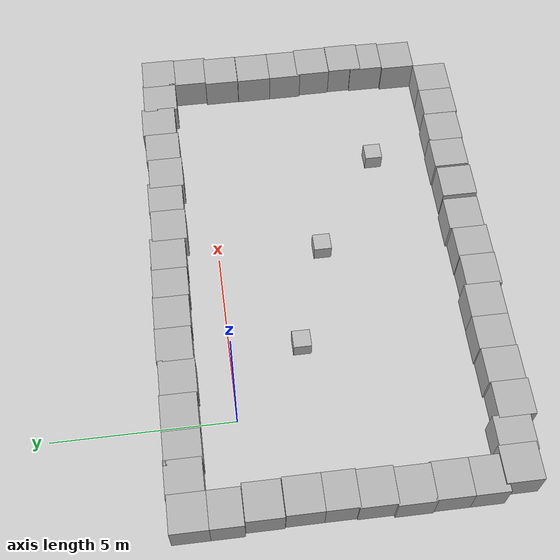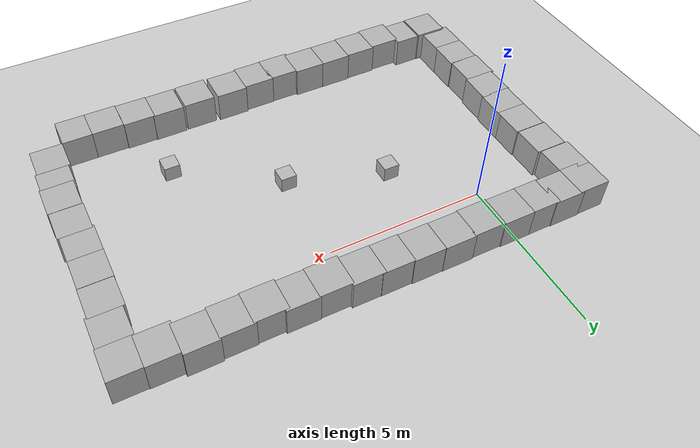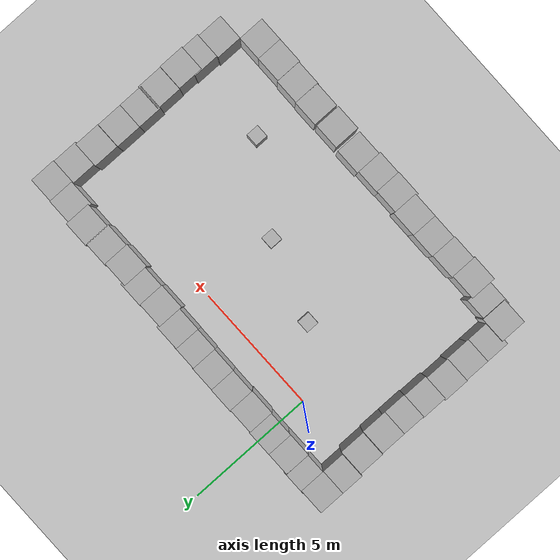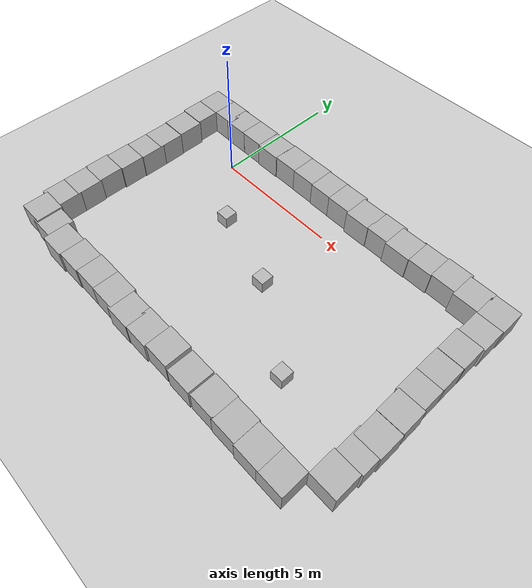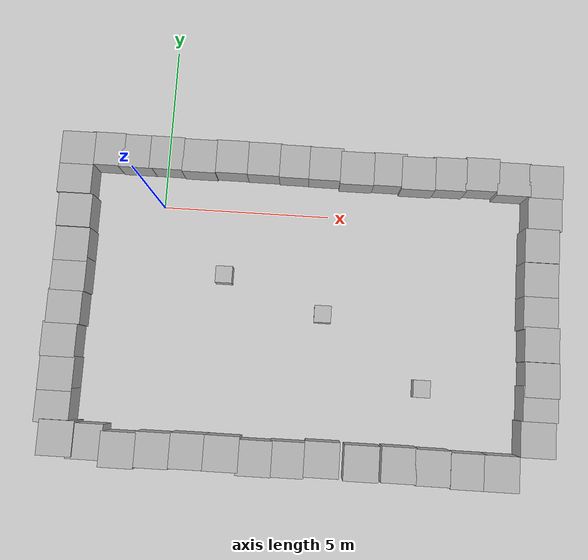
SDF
<sdf version="1.10">
 <world name="empty">
  <model name="ground_plane">
   <static>true</static>
   <link name="link">
    <collision name="collision">
     <geometry><plane><normal>0 0 1</normal><size>100 100</size></plane></geometry>
     <surface><friction><ode><mu>100</mu><mu2>100</mu2></ode></friction></surface>
    </collision>
    <visual name="visual">
     <geometry><plane><normal>0 0 1</normal><size>100 100</size></plane></geometry>
     <material>
      <ambient>0.800000012 0.800000012 0.800000012 1</ambient>
      <diffuse>0.800000012 0.800000012 0.800000012 1</diffuse>
      <specular>0.800000012 0.800000012 0.800000012 1</specular>
     </material>
    </visual>
    <inertial>
     <mass>1</mass>
     <inertia><ixx>1</ixx><ixy>0</ixy><ixz>0</ixz><iyy>1</iyy><iyz>0</iyz><izz>1</izz></inertia>
    </inertial>
   </link>
  </model>
  <model name="box_0">
   <pose>11.32392406463623 -5.2342853546142578 0.49999052286148071 4.5785601260241481e-06 -1.3607700603230235e-07 -1.2972199943013749e-06</pose>
   <link name="box_link">
    <inertial>
     <inertia><ixx>0.16666</ixx><ixy>0</ixy><ixz>0</ixz><iyy>0.16666</iyy><iyz>0</iyz><izz>0.16666</izz></inertia>
     <mass>1</mass>
    </inertial>
    <collision name="box_collision"><geometry><box><size>1 1 1</size></box></geometry></collision>
    <visual name="box_visual">
     <geometry><box><size>1 1 1</size></box></geometry>
     <material>
      <ambient>0.300000012 0.300000012 0.300000012 1</ambient>
      <diffuse>0.699999988 0.699999988 0.699999988 1</diffuse>
      <specular>1 1 1 1</specular>
     </material>
    </visual>
   </link>
   <static>true</static>
  </model>
  <model name="box_1">
   <pose>0.081497767922265402 1.4758442578728908 0.50000082447435479 -1.659949377580284e-07 3.0248841230517064e-06 -0.00088691190674532714</pose>
   <link name="box_link">
    <inertial>
     <inertia><ixx>0.16666</ixx><ixy>0</ixy><ixz>0</ixz><iyy>0.16666</iyy><iyz>0</iyz><izz>0.16666</izz></inertia>
     <mass>1</mass>
    </inertial>
    <collision name="box_collision"><geometry><box><size>1 1 1</size></box></geometry></collision>
    <visual name="box_visual">
     <geometry><box><size>1 1 1</size></box></geometry>
     <material>
      <ambient>0.300000012 0.300000012 0.300000012 1</ambient>
      <diffuse>0.699999988 0.699999988 0.699999988 1</diffuse>
      <specular>1 1 1 1</specular>
     </material>
    </visual>
   </link>
   <static>true</static>
  </model>
  <model name="box_6">
   <pose>4.216820240020752 -7.192176342010498 0.49999821186065674 1.6514999738076241e-06 3.9077199600068179e-07 2.3029299294683244e-07</pose>
   <link name="box_link">
    <inertial>
     <inertia><ixx>0.16666</ixx><ixy>0</ixy><ixz>0</ixz><iyy>0.16666</iyy><iyz>0</iyz><izz>0.16666</izz></inertia>
     <mass>1</mass>
    </inertial>
    <collision name="box_collision"><geometry><box><size>1 1 1</size></box></geometry></collision>
    <visual name="box_visual">
     <geometry><box><size>1 1 1</size></box></geometry>
     <material>
      <ambient>0.300000012 0.300000012 0.300000012 1</ambient>
      <diffuse>0.699999988 0.699999988 0.699999988 1</diffuse>
      <specular>1 1 1 1</specular>
     </material>
    </visual>
   </link>
   <static>true</static>
  </model>
  <model name="box_9">
   <pose>7.6121358871459961 1.3005990982055664 0.500052809715271 1.8970099874706375e-06 -5.7500100969227469e-06 2.3601799087898293e-06</pose>
   <link name="box_link">
    <inertial>
     <inertia><ixx>0.16666</ixx><ixy>0</ixy><ixz>0</ixz><iyy>0.16666</iyy><iyz>0</iyz><izz>0.16666</izz></inertia>
     <mass>1</mass>
    </inertial>
    <collision name="box_collision"><geometry><box><size>1 1 1</size></box></geometry></collision>
    <visual name="box_visual">
     <geometry><box><size>1 1 1</size></box></geometry>
     <material>
      <ambient>0.300000012 0.300000012 0.300000012 1</ambient>
      <diffuse>0.699999988 0.699999988 0.699999988 1</diffuse>
      <specular>1 1 1 1</specular>
     </material>
    </visual>
   </link>
   <static>true</static>
  </model>
  <model name="box_1_1">
   <pose>-0.82771368686159152 1.4738958420804569 0.49999995309102147 -9.5054967524918771e-07 -6.7096570775987137e-07 -5.8611763846747842e-05</pose>
   <link name="box_link">
    <inertial>
     <inertia><ixx>0.16666</ixx><ixy>0</ixy><ixz>0</ixz><iyy>0.16666</iyy><iyz>0</iyz><izz>0.16666</izz></inertia>
     <mass>1</mass>
    </inertial>
    <collision name="box_collision"><geometry><box><size>1 1 1</size></box></geometry></collision>
    <visual name="box_visual">
     <geometry><box><size>1 1 1</size></box></geometry>
     <material>
      <ambient>0.300000012 0.300000012 0.300000012 1</ambient>
      <diffuse>0.699999988 0.699999988 0.699999988 1</diffuse>
      <specular>1 1 1 1</specular>
     </material>
    </visual>
   </link>
   <static>true</static>
  </model>
  <model name="box_1_2">
   <pose>-1.6850342750549316 1.4961209297180176 0.4999995231628418 -1.7791300232078049e-06 -1.0382700165611504e-06 -5.4270199116068455e-05</pose>
   <link name="box_link">
    <inertial>
     <inertia><ixx>0.16666</ixx><ixy>0</ixy><ixz>0</ixz><iyy>0.16666</iyy><iyz>0</iyz><izz>0.16666</izz></inertia>
     <mass>1</mass>
    </inertial>
    <collision name="box_collision"><geometry><box><size>1 1 1</size></box></geometry></collision>
    <visual name="box_visual">
     <geometry><box><size>1 1 1</size></box></geometry>
     <material>
      <ambient>0.300000012 0.300000012 0.300000012 1</ambient>
      <diffuse>0.699999988 0.699999988 0.699999988 1</diffuse>
      <specular>1 1 1 1</specular>
     </material>
    </visual>
   </link>
   <static>true</static>
  </model>
  <model name="box_1_4">
   <pose>-2.3311622142791748 -6.9827756881713867 0.56375974416732788 1.4772699527233467e-06 -7.2460899504500609e-06 -7.8109095600479929e-06</pose>
   <link name="box_link">
    <inertial>
     <inertia><ixx>0.16666</ixx><ixy>0</ixy><ixz>0</ixz><iyy>0.16666</iyy><iyz>0</iyz><izz>0.16666</izz></inertia>
     <mass>1</mass>
    </inertial>
    <collision name="box_collision"><geometry><box><size>1 1 1</size></box></geometry></collision>
    <visual name="box_visual">
     <geometry><box><size>1 1 1</size></box></geometry>
     <material>
      <ambient>0.300000012 0.300000012 0.300000012 1</ambient>
      <diffuse>0.699999988 0.699999988 0.699999988 1</diffuse>
      <specular>1 1 1 1</specular>
     </material>
    </visual>
   </link>
   <static>true</static>
  </model>
  <model name="box_1_5">
   <pose>11.367439270019531 0.28831985592842102 0.49997654557228088 -1.2311899366336e-06 2.0099299617559339e-06 -0.00044121199743193425</pose>
   <link name="box_link">
    <inertial>
     <inertia><ixx>0.16666</ixx><ixy>0</ixy><ixz>0</ixz><iyy>0.16666</iyy><iyz>0</iyz><izz>0.16666</izz></inertia>
     <mass>1</mass>
    </inertial>
    <collision name="box_collision"><geometry><box><size>1 1 1</size></box></geometry></collision>
    <visual name="box_visual">
     <geometry><box><size>1 1 1</size></box></geometry>
     <material>
      <ambient>0.300000012 0.300000012 0.300000012 1</ambient>
      <diffuse>0.699999988 0.699999988 0.699999988 1</diffuse>
      <specular>1 1 1 1</specular>
     </material>
    </visual>
   </link>
   <static>true</static>
  </model>
  <model name="box_1_6">
   <pose>-1.5197896957397461 -7.0334105491638184 0.50000894069671631 -4.4685905171906164e-07 1.8334601501242074e-06 -0.00052203906253900389</pose>
   <link name="box_link">
    <inertial>
     <inertia><ixx>0.16666</ixx><ixy>0</ixy><ixz>0</ixz><iyy>0.16666</iyy><iyz>0</iyz><izz>0.16666</izz></inertia>
     <mass>1</mass>
    </inertial>
    <collision name="box_collision"><geometry><box><size>1 1 1</size></box></geometry></collision>
    <visual name="box_visual">
     <geometry><box><size>1 1 1</size></box></geometry>
     <material>
      <ambient>0.300000012 0.300000012 0.300000012 1</ambient>
      <diffuse>0.699999988 0.699999988 0.699999988 1</diffuse>
      <specular>1 1 1 1</specular>
     </material>
    </visual>
   </link>
   <static>true</static>
  </model>
  <model name="box_1_7">
   <pose>-0.58210712671279907 -7.2118206024169922 0.50002944469451904 -2.644340059014862e-06 3.8150298530314754e-06 -0.00064699703137378189</pose>
   <link name="box_link">
    <inertial>
     <inertia><ixx>0.16666</ixx><ixy>0</ixy><ixz>0</ixz><iyy>0.16666</iyy><iyz>0</iyz><izz>0.16666</izz></inertia>
     <mass>1</mass>
    </inertial>
    <collision name="box_collision"><geometry><box><size>1 1 1</size></box></geometry></collision>
    <visual name="box_visual">
     <geometry><box><size>1 1 1</size></box></geometry>
     <material>
      <ambient>0.300000012 0.300000012 0.300000012 1</ambient>
      <diffuse>0.699999988 0.699999988 0.699999988 1</diffuse>
      <specular>1 1 1 1</specular>
     </material>
    </visual>
   </link>
   <static>true</static>
  </model>
  <model name="box_1_8">
   <pose>1.3853050470352173 -7.136298656463623 0.49999243021011353 7.3350400894571618e-07 -2.6323399011260211e-06 -0.00071629097358793658</pose>
   <link name="box_link">
    <inertial>
     <inertia><ixx>0.16666</ixx><ixy>0</ixy><ixz>0</ixz><iyy>0.16666</iyy><iyz>0</iyz><izz>0.16666</izz></inertia>
     <mass>1</mass>
    </inertial>
    <collision name="box_collision"><geometry><box><size>1 1 1</size></box></geometry></collision>
    <visual name="box_visual">
     <geometry><box><size>1 1 1</size></box></geometry>
     <material>
      <ambient>0.300000012 0.300000012 0.300000012 1</ambient>
      <diffuse>0.699999988 0.699999988 0.699999988 1</diffuse>
      <specular>1 1 1 1</specular>
     </material>
    </visual>
   </link>
   <static>true</static>
  </model>
  <model name="box_1_9">
   <pose>11.266590118408203 -6.2301864624023438 0.500008225440979 -1.3750199501617419e-06 -3.2913999658236261e-07 -0.00074492401717668347</pose>
   <link name="box_link">
    <inertial>
     <inertia><ixx>0.16666</ixx><ixy>0</ixy><ixz>0</ixz><iyy>0.16666</iyy><iyz>0</iyz><izz>0.16666</izz></inertia>
     <mass>1</mass>
    </inertial>
    <collision name="box_collision"><geometry><box><size>1 1 1</size></box></geometry></collision>
    <visual name="box_visual">
     <geometry><box><size>1 1 1</size></box></geometry>
     <material>
      <ambient>0.300000012 0.300000012 0.300000012 1</ambient>
      <diffuse>0.699999988 0.699999988 0.699999988 1</diffuse>
      <specular>1 1 1 1</specular>
     </material>
    </visual>
   </link>
   <static>true</static>
  </model>
  <model name="box_1_10">
   <pose>1.0642210155003908 1.4479578460829836 0.50000011364451891 -6.0172244619120227e-09 -3.8087394386182209e-07 -0.0008350286629237269</pose>
   <link name="box_link">
    <inertial>
     <inertia><ixx>0.16666</ixx><ixy>0</ixy><ixz>0</ixz><iyy>0.16666</iyy><iyz>0</iyz><izz>0.16666</izz></inertia>
     <mass>1</mass>
    </inertial>
    <collision name="box_collision"><geometry><box><size>1 1 1</size></box></geometry></collision>
    <visual name="box_visual">
     <geometry><box><size>1 1 1</size></box></geometry>
     <material>
      <ambient>0.300000012 0.300000012 0.300000012 1</ambient>
      <diffuse>0.699999988 0.699999988 0.699999988 1</diffuse>
      <specular>1 1 1 1</specular>
     </material>
    </visual>
   </link>
   <static>true</static>
  </model>
  <model name="box_1_11">
   <pose>2.0338804407388689 1.4725252083416804 0.49999929471211679 -1.5608393087481292e-07 2.1987121063212126e-06 -0.00084677054095839142</pose>
   <link name="box_link">
    <inertial>
     <inertia><ixx>0.16666</ixx><ixy>0</ixy><ixz>0</ixz><iyy>0.16666</iyy><iyz>0</iyz><izz>0.16666</izz></inertia>
     <mass>1</mass>
    </inertial>
    <collision name="box_collision"><geometry><box><size>1 1 1</size></box></geometry></collision>
    <visual name="box_visual">
     <geometry><box><size>1 1 1</size></box></geometry>
     <material>
      <ambient>0.300000012 0.300000012 0.300000012 1</ambient>
      <diffuse>0.699999988 0.699999988 0.699999988 1</diffuse>
      <specular>1 1 1 1</specular>
     </material>
    </visual>
   </link>
   <static>true</static>
  </model>
  <model name="box_1_12">
   <pose>3.0141956895983069 1.4611062827681174 0.49999894764163122 1.9530168368955651e-08 3.5467310433160542e-06 -0.00085036434590709045</pose>
   <link name="box_link">
    <inertial>
     <inertia><ixx>0.16666</ixx><ixy>0</ixy><ixz>0</ixz><iyy>0.16666</iyy><iyz>0</iyz><izz>0.16666</izz></inertia>
     <mass>1</mass>
    </inertial>
    <collision name="box_collision"><geometry><box><size>1 1 1</size></box></geometry></collision>
    <visual name="box_visual">
     <geometry><box><size>1 1 1</size></box></geometry>
     <material>
      <ambient>0.300000012 0.300000012 0.300000012 1</ambient>
      <diffuse>0.699999988 0.699999988 0.699999988 1</diffuse>
      <specular>1 1 1 1</specular>
     </material>
    </visual>
   </link>
   <static>true</static>
  </model>
  <model name="box_1_13">
   <pose>3.9691177865932494 1.4357824123958778 0.49999952949262622 1.6840414097600706e-07 4.2982434336786912e-06 -0.00085386546336483889</pose>
   <link name="box_link">
    <inertial>
     <inertia><ixx>0.16666</ixx><ixy>0</ixy><ixz>0</ixz><iyy>0.16666</iyy><iyz>0</iyz><izz>0.16666</izz></inertia>
     <mass>1</mass>
    </inertial>
    <collision name="box_collision"><geometry><box><size>1 1 1</size></box></geometry></collision>
    <visual name="box_visual">
     <geometry><box><size>1 1 1</size></box></geometry>
     <material>
      <ambient>0.300000012 0.300000012 0.300000012 1</ambient>
      <diffuse>0.699999988 0.699999988 0.699999988 1</diffuse>
      <specular>1 1 1 1</specular>
     </material>
    </visual>
   </link>
   <static>true</static>
  </model>
  <model name="box_1_14">
   <pose>4.8522125686715665 1.4239790232322838 0.50000078724662356 -1.1816335636225114e-07 2.5941619357477278e-06 -0.00085757440189343319</pose>
   <link name="box_link">
    <inertial>
     <inertia><ixx>0.16666</ixx><ixy>0</ixy><ixz>0</ixz><iyy>0.16666</iyy><iyz>0</iyz><izz>0.16666</izz></inertia>
     <mass>1</mass>
    </inertial>
    <collision name="box_collision"><geometry><box><size>1 1 1</size></box></geometry></collision>
    <visual name="box_visual">
     <geometry><box><size>1 1 1</size></box></geometry>
     <material>
      <ambient>0.300000012 0.300000012 0.300000012 1</ambient>
      <diffuse>0.699999988 0.699999988 0.699999988 1</diffuse>
      <specular>1 1 1 1</specular>
     </material>
    </visual>
   </link>
   <static>true</static>
  </model>
  <model name="box_1_15">
   <pose>2.352414608001709 -7.1403374671936035 0.49999868869781494 -4.0420302398711477e-07 -1.08203006382276e-06 -0.00086907604920920722</pose>
   <link name="box_link">
    <inertial>
     <inertia><ixx>0.16666</ixx><ixy>0</ixy><ixz>0</ixz><iyy>0.16666</iyy><iyz>0</iyz><izz>0.16666</izz></inertia>
     <mass>1</mass>
    </inertial>
    <collision name="box_collision"><geometry><box><size>1 1 1</size></box></geometry></collision>
    <visual name="box_visual">
     <geometry><box><size>1 1 1</size></box></geometry>
     <material>
      <ambient>0.300000012 0.300000012 0.300000012 1</ambient>
      <diffuse>0.699999988 0.699999988 0.699999988 1</diffuse>
      <specular>1 1 1 1</specular>
     </material>
    </visual>
   </link>
   <static>true</static>
  </model>
  <model name="box_1_16">
   <pose>3.2854406833648682 -7.2103390693664551 0.49999848008155823 2.8300700231066836e-07 -2.4464000060358149e-06 -0.00087134399470723337</pose>
   <link name="box_link">
    <inertial>
     <inertia><ixx>0.16666</ixx><ixy>0</ixy><ixz>0</ixz><iyy>0.16666</iyy><iyz>0</iyz><izz>0.16666</izz></inertia>
     <mass>1</mass>
    </inertial>
    <collision name="box_collision"><geometry><box><size>1 1 1</size></box></geometry></collision>
    <visual name="box_visual">
     <geometry><box><size>1 1 1</size></box></geometry>
     <material>
      <ambient>0.300000012 0.300000012 0.300000012 1</ambient>
      <diffuse>0.699999988 0.699999988 0.699999988 1</diffuse>
      <specular>1 1 1 1</specular>
     </material>
    </visual>
   </link>
   <static>true</static>
  </model>
  <model name="box_1_17">
   <pose>5.1986265182495117 -7.1348409652709961 0.49999973177909851 1.4053900706012825e-06 3.1792500594126499e-06 -0.00087428499219280688</pose>
   <link name="box_link">
    <inertial>
     <inertia><ixx>0.16666</ixx><ixy>0</ixy><ixz>0</ixz><iyy>0.16666</iyy><iyz>0</iyz><izz>0.16666</izz></inertia>
     <mass>1</mass>
    </inertial>
    <collision name="box_collision"><geometry><box><size>1 1 1</size></box></geometry></collision>
    <visual name="box_visual">
     <geometry><box><size>1 1 1</size></box></geometry>
     <material>
      <ambient>0.300000012 0.300000012 0.300000012 1</ambient>
      <diffuse>0.699999988 0.699999988 0.699999988 1</diffuse>
      <specular>1 1 1 1</specular>
     </material>
    </visual>
   </link>
   <static>true</static>
  </model>
  <model name="box_1_18">
   <pose>11.359258651733398 -4.5548291206359863 0.50001001358032227 -7.0725100848081427e-07 -2.3156501005256686e-06 -0.00087807204195929946</pose>
   <link name="box_link">
    <inertial>
     <inertia><ixx>0.16666</ixx><ixy>0</ixy><ixz>0</ixz><iyy>0.16666</iyy><iyz>0</iyz><izz>0.16666</izz></inertia>
     <mass>1</mass>
    </inertial>
    <collision name="box_collision"><geometry><box><size>1 1 1</size></box></geometry></collision>
    <visual name="box_visual">
     <geometry><box><size>1 1 1</size></box></geometry>
     <material>
      <ambient>0.300000012 0.300000012 0.300000012 1</ambient>
      <diffuse>0.699999988 0.699999988 0.699999988 1</diffuse>
      <specular>1 1 1 1</specular>
     </material>
    </visual>
   </link>
   <static>true</static>
  </model>
  <model name="box_1_19">
   <pose>11.338851928710938 -3.5495667457580566 0.50001448392868042 -1.4347900456886203e-07 -3.0373900962981022e-06 -0.00088212801027847689</pose>
   <link name="box_link">
    <inertial>
     <inertia><ixx>0.16666</ixx><ixy>0</ixy><ixz>0</ixz><iyy>0.16666</iyy><iyz>0</iyz><izz>0.16666</izz></inertia>
     <mass>1</mass>
    </inertial>
    <collision name="box_collision"><geometry><box><size>1 1 1</size></box></geometry></collision>
    <visual name="box_visual">
     <geometry><box><size>1 1 1</size></box></geometry>
     <material>
      <ambient>0.300000012 0.300000012 0.300000012 1</ambient>
      <diffuse>0.699999988 0.699999988 0.699999988 1</diffuse>
      <specular>1 1 1 1</specular>
     </material>
    </visual>
   </link>
   <static>true</static>
  </model>
  <model name="box_1_20">
   <pose>11.291440963745117 -2.6283242702484131 0.50001335144042969 -2.9596600199980076e-07 -3.0347001502097404e-06 -0.00088473402503624519</pose>
   <link name="box_link">
    <inertial>
     <inertia><ixx>0.16666</ixx><ixy>0</ixy><ixz>0</ixz><iyy>0.16666</iyy><iyz>0</iyz><izz>0.16666</izz></inertia>
     <mass>1</mass>
    </inertial>
    <collision name="box_collision"><geometry><box><size>1 1 1</size></box></geometry></collision>
    <visual name="box_visual">
     <geometry><box><size>1 1 1</size></box></geometry>
     <material>
      <ambient>0.300000012 0.300000012 0.300000012 1</ambient>
      <diffuse>0.699999988 0.699999988 0.699999988 1</diffuse>
      <specular>1 1 1 1</specular>
     </material>
    </visual>
   </link>
   <static>true</static>
  </model>
  <model name="box_1_21">
   <pose>11.289913177490234 -1.6746222972869873 0.50001537799835205 -2.3313800076848439e-07 -3.3222500696106019e-06 -0.0008847419995469929</pose>
   <link name="box_link">
    <inertial>
     <inertia><ixx>0.16666</ixx><ixy>0</ixy><ixz>0</ixz><iyy>0.16666</iyy><iyz>0</iyz><izz>0.16666</izz></inertia>
     <mass>1</mass>
    </inertial>
    <collision name="box_collision"><geometry><box><size>1 1 1</size></box></geometry></collision>
    <visual name="box_visual">
     <geometry><box><size>1 1 1</size></box></geometry>
     <material>
      <ambient>0.300000012 0.300000012 0.300000012 1</ambient>
      <diffuse>0.699999988 0.699999988 0.699999988 1</diffuse>
      <specular>1 1 1 1</specular>
     </material>
    </visual>
   </link>
   <static>true</static>
  </model>
  <model name="box_1_22">
   <pose>0.3915802538394928 -7.1653561592102051 0.50001645088195801 -1.2558800388442283e-06 3.3071800881512518e-06 -0.00088501401730302592</pose>
   <link name="box_link">
    <inertial>
     <inertia><ixx>0.16666</ixx><ixy>0</ixy><ixz>0</ixz><iyy>0.16666</iyy><iyz>0</iyz><izz>0.16666</izz></inertia>
     <mass>1</mass>
    </inertial>
    <collision name="box_collision"><geometry><box><size>1 1 1</size></box></geometry></collision>
    <visual name="box_visual">
     <geometry><box><size>1 1 1</size></box></geometry>
     <material>
      <ambient>0.300000012 0.300000012 0.300000012 1</ambient>
      <diffuse>0.699999988 0.699999988 0.699999988 1</diffuse>
      <specular>1 1 1 1</specular>
     </material>
    </visual>
   </link>
   <static>true</static>
  </model>
  <model name="box_1_23">
   <pose>11.300626754760742 -0.66718161106109619 0.50001567602157593 -2.2171000420988453e-07 -3.4629800556920605e-06 -0.00088474201049622368</pose>
   <link name="box_link">
    <inertial>
     <inertia><ixx>0.16666</ixx><ixy>0</ixy><ixz>0</ixz><iyy>0.16666</iyy><iyz>0</iyz><izz>0.16666</izz></inertia>
     <mass>1</mass>
    </inertial>
    <collision name="box_collision"><geometry><box><size>1 1 1</size></box></geometry></collision>
    <visual name="box_visual">
     <geometry><box><size>1 1 1</size></box></geometry>
     <material>
      <ambient>0.300000012 0.300000012 0.300000012 1</ambient>
      <diffuse>0.699999988 0.699999988 0.699999988 1</diffuse>
      <specular>1 1 1 1</specular>
     </material>
    </visual>
   </link>
   <static>true</static>
  </model>
  <model name="box_1_24">
   <pose>5.7862956862408916 1.3442240409047459 0.50000103176338184 -2.6178277269764577e-07 2.8794008189514646e-06 -0.00088470299283779832</pose>
   <link name="box_link">
    <inertial>
     <inertia><ixx>0.16666</ixx><ixy>0</ixy><ixz>0</ixz><iyy>0.16666</iyy><iyz>0</iyz><izz>0.16666</izz></inertia>
     <mass>1</mass>
    </inertial>
    <collision name="box_collision"><geometry><box><size>1 1 1</size></box></geometry></collision>
    <visual name="box_visual">
     <geometry><box><size>1 1 1</size></box></geometry>
     <material>
      <ambient>0.300000012 0.300000012 0.300000012 1</ambient>
      <diffuse>0.699999988 0.699999988 0.699999988 1</diffuse>
      <specular>1 1 1 1</specular>
     </material>
    </visual>
   </link>
   <static>true</static>
  </model>
  <model name="box_1_25">
   <pose>6.7490444183349609 1.363737940788269 0.50000083446502686 -1.7555800562229243e-07 -3.7949201633472122e-06 -0.00088690400658406781</pose>
   <link name="box_link">
    <inertial>
     <inertia><ixx>0.16666</ixx><ixy>0</ixy><ixz>0</ixz><iyy>0.16666</iyy><iyz>0</iyz><izz>0.16666</izz></inertia>
     <mass>1</mass>
    </inertial>
    <collision name="box_collision"><geometry><box><size>1 1 1</size></box></geometry></collision>
    <visual name="box_visual">
     <geometry><box><size>1 1 1</size></box></geometry>
     <material>
      <ambient>0.300000012 0.300000012 0.300000012 1</ambient>
      <diffuse>0.699999988 0.699999988 0.699999988 1</diffuse>
      <specular>1 1 1 1</specular>
     </material>
    </visual>
   </link>
   <static>true</static>
  </model>
  <model name="box_1_9_1">
   <pose>7.3762642540139334 -7.1537015713489476 0.50000697374343872 -1.3750201041568917e-06 -3.2914003350499565e-07 -0.00074492410061177802</pose>
   <link name="box_link">
    <inertial>
     <inertia><ixx>0.16666</ixx><ixy>0</ixy><ixz>0</ixz><iyy>0.16666</iyy><iyz>0</iyz><izz>0.16666</izz></inertia>
     <mass>1</mass>
    </inertial>
    <collision name="box_collision"><geometry><box><size>1 1 1</size></box></geometry></collision>
    <visual name="box_visual">
     <geometry><box><size>1 1 1</size></box></geometry>
     <material>
      <ambient>0.300000012 0.300000012 0.300000012 1</ambient>
      <diffuse>0.699999988 0.699999988 0.699999988 1</diffuse>
      <specular>1 1 1 1</specular>
     </material>
    </visual>
   </link>
   <static>true</static>
  </model>
  <model name="box_1_9_2">
   <pose>6.317973514707159 -7.1713780684553834 0.50000697374343872 -1.3750201041568917e-06 -3.2914003350499565e-07 -0.00074492410061177802</pose>
   <link name="box_link">
    <inertial>
     <inertia><ixx>0.16666</ixx><ixy>0</ixy><ixz>0</ixz><iyy>0.16666</iyy><iyz>0</iyz><izz>0.16666</izz></inertia>
     <mass>1</mass>
    </inertial>
    <collision name="box_collision"><geometry><box><size>1 1 1</size></box></geometry></collision>
    <visual name="box_visual">
     <geometry><box><size>1 1 1</size></box></geometry>
     <material>
      <ambient>0.300000012 0.300000012 0.300000012 1</ambient>
      <diffuse>0.699999988 0.699999988 0.699999988 1</diffuse>
      <specular>1 1 1 1</specular>
     </material>
    </visual>
   </link>
   <static>true</static>
  </model>
  <model name="box_1_9_3">
   <pose>8.5390912231946565 1.3304825312121946 0.50000697374343872 -1.3750201041568917e-06 -3.2914003350499565e-07 -0.00074492410061177802</pose>
   <link name="box_link">
    <inertial>
     <inertia><ixx>0.16666</ixx><ixy>0</ixy><ixz>0</ixz><iyy>0.16666</iyy><iyz>0</iyz><izz>0.16666</izz></inertia>
     <mass>1</mass>
    </inertial>
    <collision name="box_collision"><geometry><box><size>1 1 1</size></box></geometry></collision>
    <visual name="box_visual">
     <geometry><box><size>1 1 1</size></box></geometry>
     <material>
      <ambient>0.300000012 0.300000012 0.300000012 1</ambient>
      <diffuse>0.699999988 0.699999988 0.699999988 1</diffuse>
      <specular>1 1 1 1</specular>
     </material>
    </visual>
   </link>
   <static>true</static>
  </model>
  <model name="box_1_9_4">
   <pose>9.5060976343228134 1.378440217254369 0.50000697374343872 -1.3750201041568917e-06 -3.2914003350499565e-07 -0.00074492410061177802</pose>
   <link name="box_link">
    <inertial>
     <inertia><ixx>0.16666</ixx><ixy>0</ixy><ixz>0</ixz><iyy>0.16666</iyy><iyz>0</iyz><izz>0.16666</izz></inertia>
     <mass>1</mass>
    </inertial>
    <collision name="box_collision"><geometry><box><size>1 1 1</size></box></geometry></collision>
    <visual name="box_visual">
     <geometry><box><size>1 1 1</size></box></geometry>
     <material>
      <ambient>0.300000012 0.300000012 0.300000012 1</ambient>
      <diffuse>0.699999988 0.699999988 0.699999988 1</diffuse>
      <specular>1 1 1 1</specular>
     </material>
    </visual>
   </link>
   <static>true</static>
  </model>
  <model name="box_1_9_5">
   <pose>10.446373325779421 1.286671453036786 0.50000697374343872 -1.3750201041568917e-06 -3.2914003350499565e-07 -0.00074492410061177802</pose>
   <link name="box_link">
    <inertial>
     <inertia><ixx>0.16666</ixx><ixy>0</ixy><ixz>0</ixz><iyy>0.16666</iyy><iyz>0</iyz><izz>0.16666</izz></inertia>
     <mass>1</mass>
    </inertial>
    <collision name="box_collision"><geometry><box><size>1 1 1</size></box></geometry></collision>
    <visual name="box_visual">
     <geometry><box><size>1 1 1</size></box></geometry>
     <material>
      <ambient>0.300000012 0.300000012 0.300000012 1</ambient>
      <diffuse>0.699999988 0.699999988 0.699999988 1</diffuse>
      <specular>1 1 1 1</specular>
     </material>
    </visual>
   </link>
   <static>true</static>
  </model>
  <model name="box_1_9_6">
   <pose>11.394654284721813 1.2646962807962532 0.50000697374343872 -1.3750201041568917e-06 -3.2914003350499565e-07 -0.00074492410061177802</pose>
   <link name="box_link">
    <inertial>
     <inertia><ixx>0.16666</ixx><ixy>0</ixy><ixz>0</ixz><iyy>0.16666</iyy><iyz>0</iyz><izz>0.16666</izz></inertia>
     <mass>1</mass>
    </inertial>
    <collision name="box_collision"><geometry><box><size>1 1 1</size></box></geometry></collision>
    <visual name="box_visual">
     <geometry><box><size>1 1 1</size></box></geometry>
     <material>
      <ambient>0.300000012 0.300000012 0.300000012 1</ambient>
      <diffuse>0.699999988 0.699999988 0.699999988 1</diffuse>
      <specular>1 1 1 1</specular>
     </material>
    </visual>
   </link>
   <static>true</static>
  </model>
  <model name="box_1_9_7">
   <pose>8.3284622452149257 -7.176938399504003 0.5000079870223999 -1.3750201041568917e-06 -3.2914003350499565e-07 -0.00074492410061177802</pose>
   <link name="box_link">
    <inertial>
     <inertia><ixx>0.16666</ixx><ixy>0</ixy><ixz>0</ixz><iyy>0.16666</iyy><iyz>0</iyz><izz>0.16666</izz></inertia>
     <mass>1</mass>
    </inertial>
    <collision name="box_collision"><geometry><box><size>1 1 1</size></box></geometry></collision>
    <visual name="box_visual">
     <geometry><box><size>1 1 1</size></box></geometry>
     <material>
      <ambient>0.300000012 0.300000012 0.300000012 1</ambient>
      <diffuse>0.699999988 0.699999988 0.699999988 1</diffuse>
      <specular>1 1 1 1</specular>
     </material>
    </visual>
   </link>
   <static>true</static>
  </model>
  <model name="box_1_9_8">
   <pose>9.3296740121315853 -7.2134405371929251 0.5000079870223999 -1.3750201041568917e-06 -3.2914003350499565e-07 -0.00074492410061177802</pose>
   <link name="box_link">
    <inertial>
     <inertia><ixx>0.16666</ixx><ixy>0</ixy><ixz>0</ixz><iyy>0.16666</iyy><iyz>0</iyz><izz>0.16666</izz></inertia>
     <mass>1</mass>
    </inertial>
    <collision name="box_collision"><geometry><box><size>1 1 1</size></box></geometry></collision>
    <visual name="box_visual">
     <geometry><box><size>1 1 1</size></box></geometry>
     <material>
      <ambient>0.300000012 0.300000012 0.300000012 1</ambient>
      <diffuse>0.699999988 0.699999988 0.699999988 1</diffuse>
      <specular>1 1 1 1</specular>
     </material>
    </visual>
   </link>
   <static>true</static>
  </model>
  <model name="box_1_9_9">
   <pose>10.260706622586625 -7.2153497453324063 0.5000079870223999 -1.3750201041568917e-06 -3.2914003350499565e-07 -0.00074492410061177802</pose>
   <link name="box_link">
    <inertial>
     <inertia><ixx>0.16666</ixx><ixy>0</ixy><ixz>0</ixz><iyy>0.16666</iyy><iyz>0</iyz><izz>0.16666</izz></inertia>
     <mass>1</mass>
    </inertial>
    <collision name="box_collision"><geometry><box><size>1 1 1</size></box></geometry></collision>
    <visual name="box_visual">
     <geometry><box><size>1 1 1</size></box></geometry>
     <material>
      <ambient>0.300000012 0.300000012 0.300000012 1</ambient>
      <diffuse>0.699999988 0.699999988 0.699999988 1</diffuse>
      <specular>1 1 1 1</specular>
     </material>
    </visual>
   </link>
   <static>true</static>
  </model>
  <model name="box_1_9_10">
   <pose>-2.5776304290746044 1.4769192680594325 0.5000079870223999 -1.3750201041568917e-06 -3.2914003350499565e-07 -0.00074492410061177802</pose>
   <link name="box_link">
    <inertial>
     <inertia><ixx>0.16666</ixx><ixy>0</ixy><ixz>0</ixz><iyy>0.16666</iyy><iyz>0</iyz><izz>0.16666</izz></inertia>
     <mass>1</mass>
    </inertial>
    <collision name="box_collision"><geometry><box><size>1 1 1</size></box></geometry></collision>
    <visual name="box_visual">
     <geometry><box><size>1 1 1</size></box></geometry>
     <material>
      <ambient>0.300000012 0.300000012 0.300000012 1</ambient>
      <diffuse>0.699999988 0.699999988 0.699999988 1</diffuse>
      <specular>1 1 1 1</specular>
     </material>
    </visual>
   </link>
   <static>true</static>
  </model>
  <model name="box_1_9_11">
   <pose>-2.5776303054885878 0.60288682621728107 0.5000079870223999 -1.3750201041568917e-06 -3.2914003350499565e-07 -0.00074492410061177802</pose>
   <link name="box_link">
    <inertial>
     <inertia><ixx>0.16666</ixx><ixy>0</ixy><ixz>0</ixz><iyy>0.16666</iyy><iyz>0</iyz><izz>0.16666</izz></inertia>
     <mass>1</mass>
    </inertial>
    <collision name="box_collision"><geometry><box><size>1 1 1</size></box></geometry></collision>
    <visual name="box_visual">
     <geometry><box><size>1 1 1</size></box></geometry>
     <material>
      <ambient>0.300000012 0.300000012 0.300000012 1</ambient>
      <diffuse>0.699999988 0.699999988 0.699999988 1</diffuse>
      <specular>1 1 1 1</specular>
     </material>
    </visual>
   </link>
   <static>true</static>
  </model>
  <model name="box_1_9_12">
   <pose>-2.4944533561355771 -0.41162314826909974 0.5000079870223999 -1.3750201041568917e-06 -3.2914003350499565e-07 -0.00074492410061177802</pose>
   <link name="box_link">
    <inertial>
     <inertia><ixx>0.16666</ixx><ixy>0</ixy><ixz>0</ixz><iyy>0.16666</iyy><iyz>0</iyz><izz>0.16666</izz></inertia>
     <mass>1</mass>
    </inertial>
    <collision name="box_collision"><geometry><box><size>1 1 1</size></box></geometry></collision>
    <visual name="box_visual">
     <geometry><box><size>1 1 1</size></box></geometry>
     <material>
      <ambient>0.300000012 0.300000012 0.300000012 1</ambient>
      <diffuse>0.699999988 0.699999988 0.699999988 1</diffuse>
      <specular>1 1 1 1</specular>
     </material>
    </visual>
   </link>
   <static>true</static>
  </model>
  <model name="box_1_9_13">
   <pose>-2.4665367725995133 -1.4270401482764989 0.5000079870223999 -1.3750201041568917e-06 -3.2914003350499565e-07 -0.00074492410061177802</pose>
   <link name="box_link">
    <inertial>
     <inertia><ixx>0.16666</ixx><ixy>0</ixy><ixz>0</ixz><iyy>0.16666</iyy><iyz>0</iyz><izz>0.16666</izz></inertia>
     <mass>1</mass>
    </inertial>
    <collision name="box_collision"><geometry><box><size>1 1 1</size></box></geometry></collision>
    <visual name="box_visual">
     <geometry><box><size>1 1 1</size></box></geometry>
     <material>
      <ambient>0.300000012 0.300000012 0.300000012 1</ambient>
      <diffuse>0.699999988 0.699999988 0.699999988 1</diffuse>
      <specular>1 1 1 1</specular>
     </material>
    </visual>
   </link>
   <static>true</static>
  </model>
  <model name="box_1_9_14">
   <pose>-2.4665366516045064 -2.3013701113825071 0.5000079870223999 -1.3750201041568917e-06 -3.2914003350499565e-07 -0.00074492410061177802</pose>
   <link name="box_link">
    <inertial>
     <inertia><ixx>0.16666</ixx><ixy>0</ixy><ixz>0</ixz><iyy>0.16666</iyy><iyz>0</iyz><izz>0.16666</izz></inertia>
     <mass>1</mass>
    </inertial>
    <collision name="box_collision"><geometry><box><size>1 1 1</size></box></geometry></collision>
    <visual name="box_visual">
     <geometry><box><size>1 1 1</size></box></geometry>
     <material>
      <ambient>0.300000012 0.300000012 0.300000012 1</ambient>
      <diffuse>0.699999988 0.699999988 0.699999988 1</diffuse>
      <specular>1 1 1 1</specular>
     </material>
    </visual>
   </link>
   <static>true</static>
  </model>
  <model name="box_1_9_15">
   <pose>-2.4944533967967297 -3.2601799568170886 0.5000079870223999 -1.3750201041568917e-06 -3.2914003350499565e-07 -0.00074492410061177802</pose>
   <link name="box_link">
    <inertial>
     <inertia><ixx>0.16666</ixx><ixy>0</ixy><ixz>0</ixz><iyy>0.16666</iyy><iyz>0</iyz><izz>0.16666</izz></inertia>
     <mass>1</mass>
    </inertial>
    <collision name="box_collision"><geometry><box><size>1 1 1</size></box></geometry></collision>
    <visual name="box_visual">
     <geometry><box><size>1 1 1</size></box></geometry>
     <material>
      <ambient>0.300000012 0.300000012 0.300000012 1</ambient>
      <diffuse>0.699999988 0.699999988 0.699999988 1</diffuse>
      <specular>1 1 1 1</specular>
     </material>
    </visual>
   </link>
   <static>true</static>
  </model>
  <model name="box_1_9_16">
   <pose>-2.5500030660145718 -4.2183122963191302 0.5000079870223999 -1.3750201041568917e-06 -3.2914003350499565e-07 -0.00074492410061177802</pose>
   <link name="box_link">
    <inertial>
     <inertia><ixx>0.16666</ixx><ixy>0</ixy><ixz>0</ixz><iyy>0.16666</iyy><iyz>0</iyz><izz>0.16666</izz></inertia>
     <mass>1</mass>
    </inertial>
    <collision name="box_collision"><geometry><box><size>1 1 1</size></box></geometry></collision>
    <visual name="box_visual">
     <geometry><box><size>1 1 1</size></box></geometry>
     <material>
      <ambient>0.300000012 0.300000012 0.300000012 1</ambient>
      <diffuse>0.699999988 0.699999988 0.699999988 1</diffuse>
      <specular>1 1 1 1</specular>
     </material>
    </visual>
   </link>
   <static>true</static>
  </model>
  <model name="box_1_9_17">
   <pose>-2.5223646004204285 -5.177744814943825 0.5000079870223999 -1.3750201041568917e-06 -3.2914003350499565e-07 -0.00074492410061177802</pose>
   <link name="box_link">
    <inertial>
     <inertia><ixx>0.16666</ixx><ixy>0</ixy><ixz>0</ixz><iyy>0.16666</iyy><iyz>0</iyz><izz>0.16666</izz></inertia>
     <mass>1</mass>
    </inertial>
    <collision name="box_collision"><geometry><box><size>1 1 1</size></box></geometry></collision>
    <visual name="box_visual">
     <geometry><box><size>1 1 1</size></box></geometry>
     <material>
      <ambient>0.300000012 0.300000012 0.300000012 1</ambient>
      <diffuse>0.699999988 0.699999988 0.699999988 1</diffuse>
      <specular>1 1 1 1</specular>
     </material>
    </visual>
   </link>
   <static>true</static>
  </model>
  <model name="box_1_9_18">
   <pose>-2.5223648512296055 -6.080232146729502 0.5000079870223999 -1.3750201041568917e-06 -3.2914003350499565e-07 -0.00074492410061177802</pose>
   <link name="box_link">
    <inertial>
     <inertia><ixx>0.16666</ixx><ixy>0</ixy><ixz>0</ixz><iyy>0.16666</iyy><iyz>0</iyz><izz>0.16666</izz></inertia>
     <mass>1</mass>
    </inertial>
    <collision name="box_collision"><geometry><box><size>1 1 1</size></box></geometry></collision>
    <visual name="box_visual">
     <geometry><box><size>1 1 1</size></box></geometry>
     <material>
      <ambient>0.300000012 0.300000012 0.300000012 1</ambient>
      <diffuse>0.699999988 0.699999988 0.699999988 1</diffuse>
      <specular>1 1 1 1</specular>
     </material>
    </visual>
   </link>
   <static>true</static>
  </model>
  <model name="moving_box_1">
   <static>false</static>
   <pose>2 -2 0.25 0 0 0</pose>
   <link name="link">
    <collision name="collision"><geometry><box><size>0.5 0.5 0.5</size></box></geometry></collision>
    <visual name="visual"><geometry><box><size>0.5 0.5 0.5</size></box></geometry></visual>
   </link>
  </model>
  <model name="moving_box_2">
   <static>false</static>
   <pose>5 -3 0.25 0 0 0</pose>
   <link name="link">
    <collision name="collision"><geometry><box><size>0.5 0.5 0.5</size></box></geometry></collision>
    <visual name="visual"><geometry><box><size>0.5 0.5 0.5</size></box></geometry></visual>
   </link>
  </model>
  <model name="moving_box_3">
   <static>false</static>
   <pose>8 -5 0.25 0 0 0</pose>
   <link name="link">
    <collision name="collision"><geometry><box><size>0.5 0.5 0.5</size></box></geometry></collision>
    <visual name="visual"><geometry><box><size>0.5 0.5 0.5</size></box></geometry></visual>
   </link>
  </model>
 </world>
</sdf>
